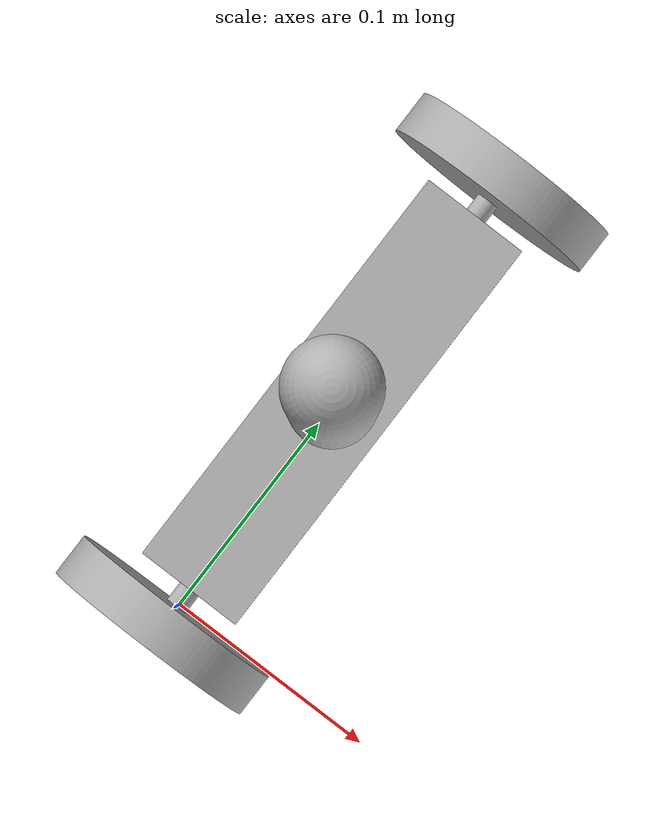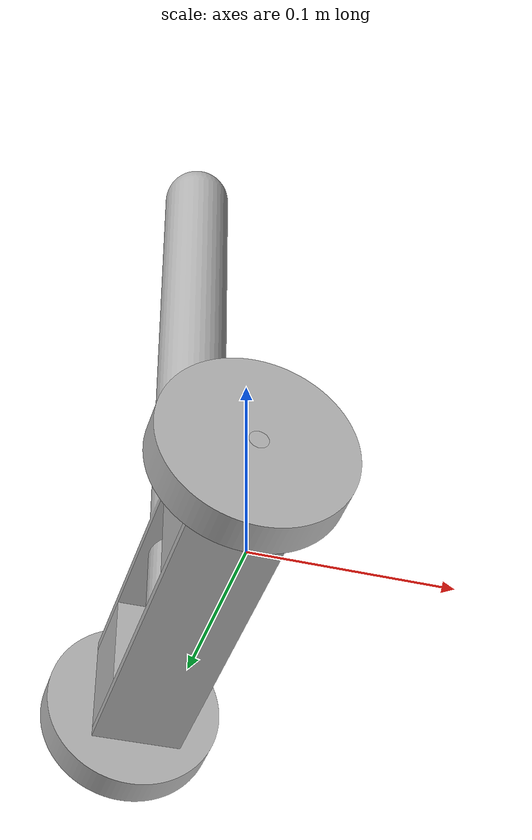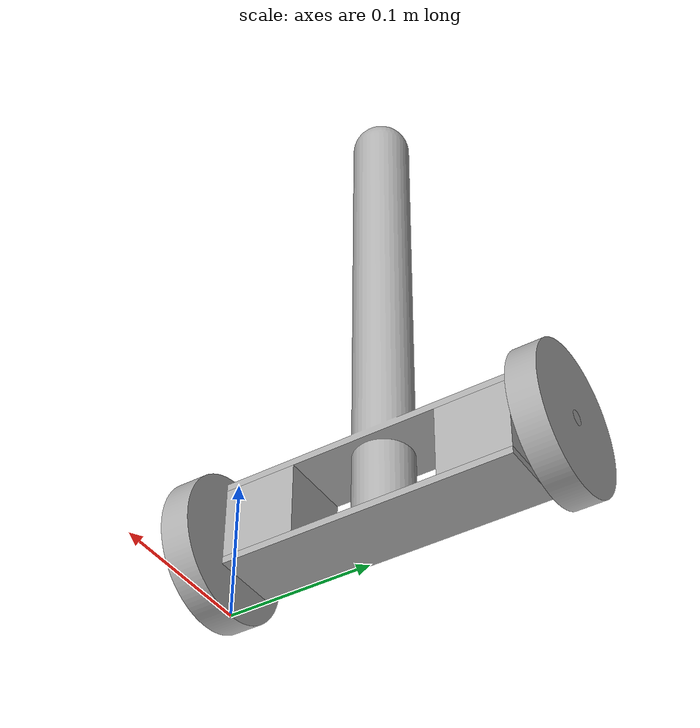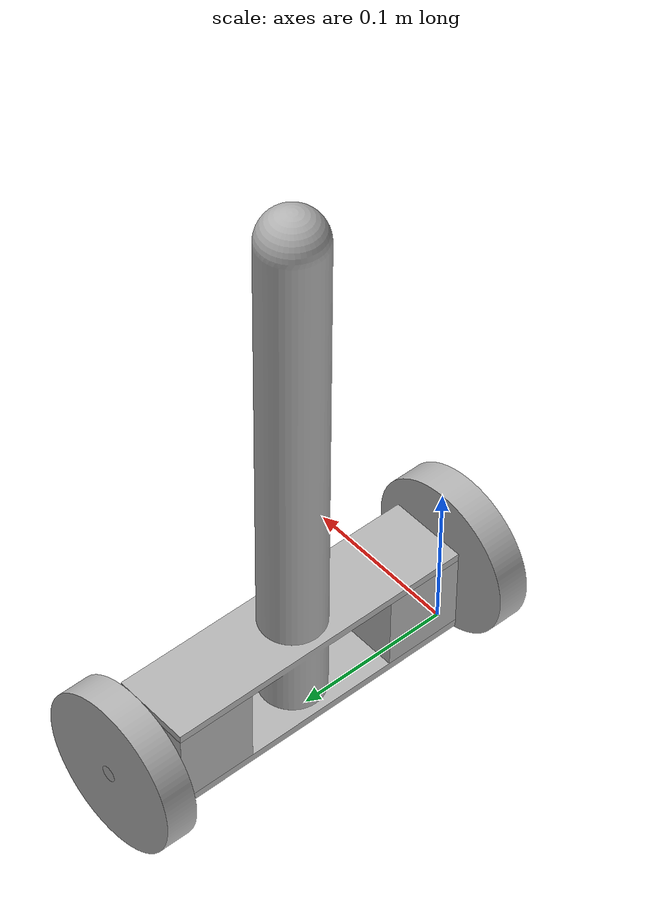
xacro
<?xml version="1.0" ?>
<robot name="sbr" xmlns:xacro="http://www.ros.org/wiki/xacro">

<xacro:include filename="$(find sbr_description)/urdf/materials.xacro" />
<xacro:include filename="$(find sbr_description)/urdf/sbr.trans" />
<xacro:include filename="$(find sbr_description)/urdf/sbr.gazebo" />
<link name="base_link">
  <inertial>
    <origin xyz="0.0 0.11 0.0225" rpy="0 0 0"/>
    <mass value="0.39249999999999996"/>
    <inertia ixx="0.001309" iyy="8.3e-05" izz="0.00139" ixy="0.0" iyz="0.0" ixz="0.0"/>
  </inertial>
  <visual>
    <origin xyz="0 0 0" rpy="0 0 0"/>
    <geometry>
      <mesh filename="file://$(find sbr_description)/meshes/base_link.stl" scale="0.001 0.001 0.001"/>
    </geometry>
    <material name="silver"/>
  </visual>
  <collision>
    <origin xyz="0 0 0" rpy="0 0 0"/>
    <geometry>
      <mesh filename="file://$(find sbr_description)/meshes/base_link.stl" scale="0.001 0.001 0.001"/>
    </geometry>
  </collision>
</link>

<link name="right_motor_bracket_1">
  <inertial>
    <origin xyz="-0.024999999999999998 -0.025000000000000022 0.025" rpy="0 0 0"/>
    <mass value="0.9812500000000001"/>
    <inertia ixx="0.000409" iyy="0.000409" izz="0.000409" ixy="0.0" iyz="0.0" ixz="-0.0"/>
  </inertial>
  <visual>
    <origin xyz="-0.025 -0.21 -0.025" rpy="0 0 0"/>
    <geometry>
      <mesh filename="file://$(find sbr_description)/meshes/right_motor_bracket_1.stl" scale="0.001 0.001 0.001"/>
    </geometry>
    <material name="silver"/>
  </visual>
  <collision>
    <origin xyz="-0.025 -0.21 -0.025" rpy="0 0 0"/>
    <geometry>
      <mesh filename="file://$(find sbr_description)/meshes/right_motor_bracket_1.stl" scale="0.001 0.001 0.001"/>
    </geometry>
  </collision>
</link>

<link name="left_motor_bracket_1">
  <inertial>
    <origin xyz="-0.025 0.025 0.025" rpy="0 0 0"/>
    <mass value="0.98125"/>
    <inertia ixx="0.000409" iyy="0.000409" izz="0.000409" ixy="0.0" iyz="0.0" ixz="0.0"/>
  </inertial>
  <visual>
    <origin xyz="-0.025 -0.01 -0.025" rpy="0 0 0"/>
    <geometry>
      <mesh filename="file://$(find sbr_description)/meshes/left_motor_bracket_1.stl" scale="0.001 0.001 0.001"/>
    </geometry>
    <material name="silver"/>
  </visual>
  <collision>
    <origin xyz="-0.025 -0.01 -0.025" rpy="0 0 0"/>
    <geometry>
      <mesh filename="file://$(find sbr_description)/meshes/left_motor_bracket_1.stl" scale="0.001 0.001 0.001"/>
    </geometry>
  </collision>
</link>

<link name="top_part_1">
  <inertial>
    <origin xyz="0.0 1.3877787807814457e-17 0.16314793726331642" rpy="0 0 0"/>
    <mass value="3.7793463200800357"/>
    <inertia ixx="0.041048" iyy="0.039822" izz="0.002062" ixy="0.0" iyz="-0.0" ixz="0.0"/>
  </inertial>
  <visual>
    <origin xyz="-0.0 -0.11 -0.025" rpy="0 0 0"/>
    <geometry>
      <mesh filename="file://$(find sbr_description)/meshes/top_part_1.stl" scale="0.001 0.001 0.001"/>
    </geometry>
    <material name="silver"/>
  </visual>
  <collision>
    <origin xyz="-0.0 -0.11 -0.025" rpy="0 0 0"/>
    <geometry>
      <mesh filename="file://$(find sbr_description)/meshes/top_part_1.stl" scale="0.001 0.001 0.001"/>
    </geometry>
  </collision>
</link>

<link name="left_wheel_1">
  <inertial>
    <origin xyz="5.300210539884436e-15 0.00999999999999999 6.938893903907228e-18" rpy="0 0 0"/>
    <mass value="1.2207443653686532"/>
    <inertia ixx="0.000811" iyy="0.001541" izz="0.000811" ixy="0.0" iyz="0.0" ixz="0.0"/>
  </inertial>
  <visual>
    <origin xyz="-0.0 0.02 -0.05" rpy="0 0 0"/>
    <geometry>
      <mesh filename="file://$(find sbr_description)/meshes/left_wheel_1.stl" scale="0.001 0.001 0.001"/>
    </geometry>
    <material name="silver"/>
  </visual>
  <collision>
    <origin xyz="-0.0 0.02 -0.05" rpy="0 0 0"/>
    <geometry>
      <mesh filename="file://$(find sbr_description)/meshes/left_wheel_1.stl" scale="0.001 0.001 0.001"/>
    </geometry>
  </collision>
</link>

<link name="right_wheel_1">
  <inertial>
    <origin xyz="5.2782786342021545e-15 -0.009999999999999981 -1.3877787807814457e-17" rpy="0 0 0"/>
    <mass value="1.2207443653686532"/>
    <inertia ixx="0.000811" iyy="0.001541" izz="0.000811" ixy="-0.0" iyz="-0.0" ixz="-0.0"/>
  </inertial>
  <visual>
    <origin xyz="-0.0 -0.24 -0.05" rpy="0 0 0"/>
    <geometry>
      <mesh filename="file://$(find sbr_description)/meshes/right_wheel_1.stl" scale="0.001 0.001 0.001"/>
    </geometry>
    <material name="silver"/>
  </visual>
  <collision>
    <origin xyz="-0.0 -0.24 -0.05" rpy="0 0 0"/>
    <geometry>
      <mesh filename="file://$(find sbr_description)/meshes/right_wheel_1.stl" scale="0.001 0.001 0.001"/>
    </geometry>
  </collision>
</link>

<link name="left_motor_shaft_1">
  <inertial>
    <origin xyz="2.614199199251328e-13 -0.014999999999999836 -1.3877787807814457e-17" rpy="0 0 0"/>
    <mass value="0.018496126748010308"/>
    <inertia ixx="2e-06" iyy="0.0" izz="2e-06" ixy="-0.0" iyz="0.0" ixz="-0.0"/>
  </inertial>
  <visual>
    <origin xyz="-0.0 -0.01 -0.05" rpy="0 0 0"/>
    <geometry>
      <mesh filename="file://$(find sbr_description)/meshes/left_motor_shaft_1.stl" scale="0.001 0.001 0.001"/>
    </geometry>
    <material name="silver"/>
  </visual>
  <collision>
    <origin xyz="-0.0 -0.01 -0.05" rpy="0 0 0"/>
    <geometry>
      <mesh filename="file://$(find sbr_description)/meshes/left_motor_shaft_1.stl" scale="0.001 0.001 0.001"/>
    </geometry>
  </collision>
</link>

<link name="right_motor_shaft_1">
  <inertial>
    <origin xyz="-2.614152079922716e-13 0.01499999999999993 2.0816681711721685e-17" rpy="0 0 0"/>
    <mass value="0.018496126748010294"/>
    <inertia ixx="2e-06" iyy="0.0" izz="2e-06" ixy="-0.0" iyz="-0.0" ixz="0.0"/>
  </inertial>
  <visual>
    <origin xyz="-0.0 -0.21 -0.05" rpy="0 0 0"/>
    <geometry>
      <mesh filename="file://$(find sbr_description)/meshes/right_motor_shaft_1.stl" scale="0.001 0.001 0.001"/>
    </geometry>
    <material name="silver"/>
  </visual>
  <collision>
    <origin xyz="-0.0 -0.21 -0.05" rpy="0 0 0"/>
    <geometry>
      <mesh filename="file://$(find sbr_description)/meshes/right_motor_shaft_1.stl" scale="0.001 0.001 0.001"/>
    </geometry>
  </collision>
</link>

<joint name="rigid_1" type="fixed">
  <origin xyz="0.025 0.21 0.025" rpy="0 0 0"/>
  <parent link="base_link"/>
  <child link="right_motor_bracket_1"/>
</joint>

<joint name="rigid_2" type="fixed">
  <origin xyz="0.025 0.01 0.025" rpy="0 0 0"/>
  <parent link="base_link"/>
  <child link="left_motor_bracket_1"/>
</joint>

<joint name="rigid_3" type="fixed">
  <origin xyz="0.0 0.11 0.025" rpy="0 0 0"/>
  <parent link="base_link"/>
  <child link="top_part_1"/>
</joint>

<joint name="rigid_4" type="fixed">
  <origin xyz="0.0 -0.03 0.0" rpy="0 0 0"/>
  <parent link="left_motor_shaft_1"/>
  <child link="left_wheel_1"/>
</joint>

<joint name="rigid_5" type="fixed">
  <origin xyz="0.0 0.03 0.0" rpy="0 0 0"/>
  <parent link="right_motor_shaft_1"/>
  <child link="right_wheel_1"/>
</joint>

<joint name="revolute_1" type="continuous">
  <origin xyz="-0.025 0.0 0.025" rpy="0 0 0"/>
  <parent link="left_motor_bracket_1"/>
  <child link="left_motor_shaft_1"/>
  <axis xyz="0.0 -1.0 0.0"/>
</joint>

<joint name="revolute_2" type="continuous">
  <origin xyz="-0.025 0.0 0.025" rpy="0 0 0"/>
  <parent link="right_motor_bracket_1"/>
  <child link="right_motor_shaft_1"/>
  <axis xyz="0.0 1.0 0.0"/>
</joint>

</robot>

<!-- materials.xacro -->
<robot name="sbr" xmlns:xacro="http://www.ros.org/wiki/xacro" >

<material name="silver">
  <color rgba="0.700 0.700 0.700 1.000"/>
</material>

</robot>

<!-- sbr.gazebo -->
<robot name="sbr" xmlns:xacro="http://www.ros.org/wiki/xacro" >

<xacro:property name="body_color" value="Gazebo/Silver" />

<gazebo>
  <plugin name="control" filename="libgazebo_ros_control.so"/>
</gazebo>
<gazebo reference="base_link">
  <material>${body_color}</material>
  <mu1>0.2</mu1>
  <mu2>0.2</mu2>
  <self_collide>true</self_collide>
  <gravity>true</gravity>
</gazebo>

<gazebo reference="right_motor_bracket_1">
  <material>${body_color}</material>
  <mu1>0.2</mu1>
  <mu2>0.2</mu2>
  <self_collide>true</self_collide>
</gazebo>

<gazebo reference="left_motor_bracket_1">
  <material>${body_color}</material>
  <mu1>0.2</mu1>
  <mu2>0.2</mu2>
  <self_collide>true</self_collide>
</gazebo>

<gazebo reference="top_part_1">
  <material>${body_color}</material>
  <mu1>0.2</mu1>
  <mu2>0.2</mu2>
  <self_collide>true</self_collide>
</gazebo>

<gazebo reference="left_wheel_1">
  <material>${body_color}</material>
  <mu1>0.2</mu1>
  <mu2>0.2</mu2>
  <self_collide>true</self_collide>
</gazebo>

<gazebo reference="right_wheel_1">
  <material>${body_color}</material>
  <mu1>0.2</mu1>
  <mu2>0.2</mu2>
  <self_collide>true</self_collide>
</gazebo>

<gazebo reference="left_motor_shaft_1">
  <material>${body_color}</material>
  <mu1>0.2</mu1>
  <mu2>0.2</mu2>
  <self_collide>true</self_collide>
</gazebo>

<gazebo reference="right_motor_shaft_1">
  <material>${body_color}</material>
  <mu1>0.2</mu1>
  <mu2>0.2</mu2>
  <self_collide>true</self_collide>
</gazebo>

</robot>
